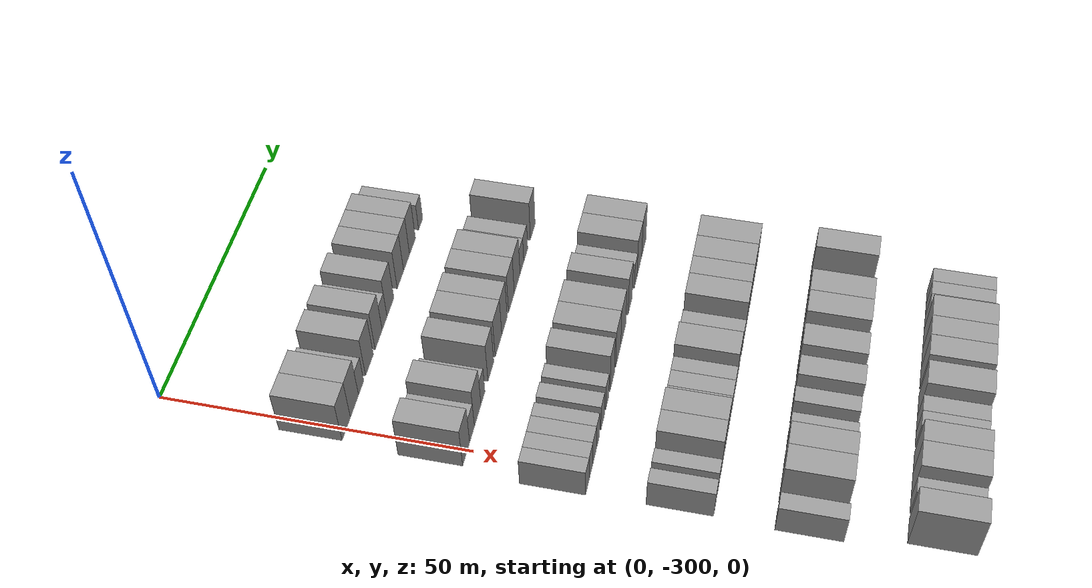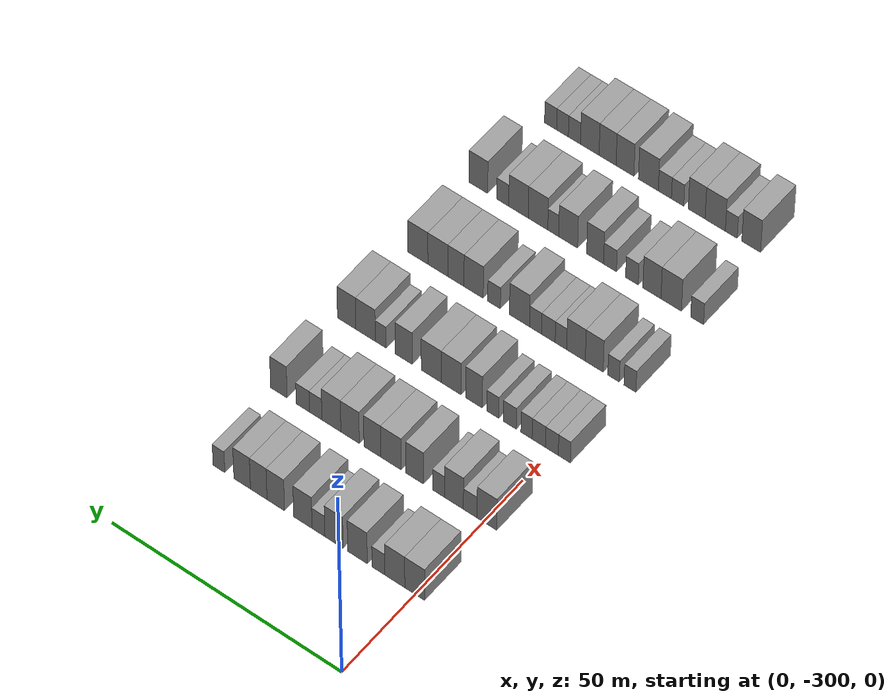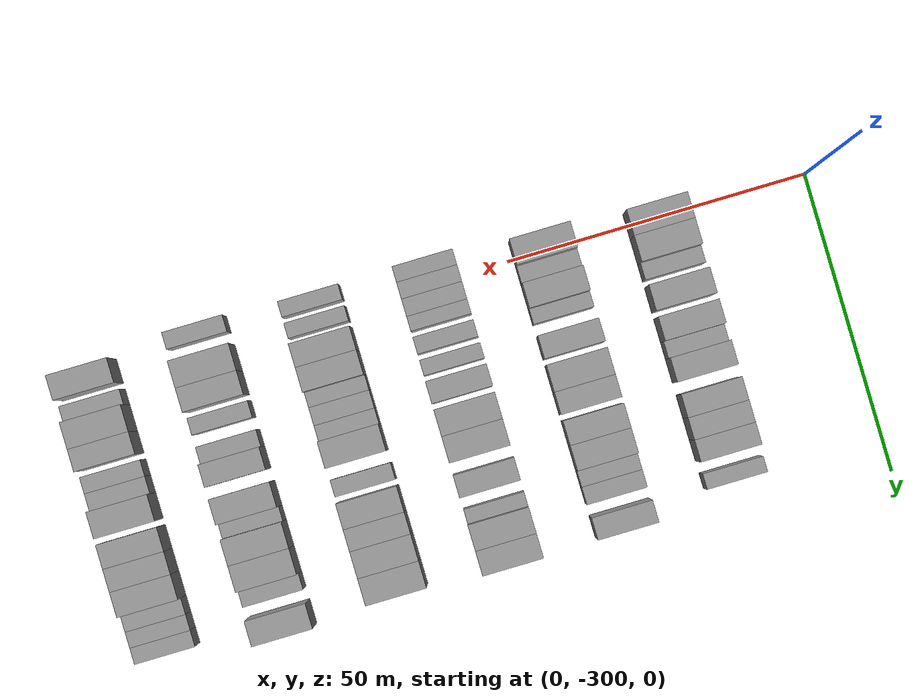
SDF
<sdf version="1.6">
 <world name="default">
  <model name="building_15">
   <static>1</static>
   <pose>25.0000 -299.8745 0 0.000000 0.000000 0.000000</pose>
   <link name="link">
    <pose>0 0 4.50 0 0 0</pose>
    <collision name="collision"><geometry><box><size>10.0000 4.2697 9.0000</size></box></geometry></collision>
    <visual name="visual">
     <cast_shadows>0</cast_shadows>
     <geometry><box><size>10.0000 4.2697 9.0000</size></box></geometry>
     <material>
      <script>
       <uri>model://grey_wall/materials/scripts</uri>
       <uri>model://grey_wall/materials/textures</uri>
       <name>vrc/grey_wall</name>
      </script>
     </material>
    </visual>
   </link>
  </model>
  <model name="building_16">
   <static>1</static>
   <pose>25.0000 -295.5966 0 0.000000 0.000000 0.000000</pose>
   <link name="link">
    <pose>0 0 4.50 0 0 0</pose>
    <collision name="collision"><geometry><box><size>10.0000 4.2861 9.0000</size></box></geometry></collision>
    <visual name="visual">
     <cast_shadows>0</cast_shadows>
     <geometry><box><size>10.0000 4.2861 9.0000</size></box></geometry>
     <material>
      <script>
       <uri>model://grey_wall/materials/scripts</uri>
       <uri>model://grey_wall/materials/textures</uri>
       <name>vrc/grey_wall</name>
      </script>
     </material>
    </visual>
   </link>
  </model>
  <model name="building_17">
   <static>1</static>
   <pose>25.0000 -292.0606 0 0.000000 0.000000 0.000000</pose>
   <link name="link">
    <pose>0 0 3.00 0 0 0</pose>
    <collision name="collision"><geometry><box><size>10.0000 2.7860 6.0000</size></box></geometry></collision>
    <visual name="visual">
     <cast_shadows>0</cast_shadows>
     <geometry><box><size>10.0000 2.7860 6.0000</size></box></geometry>
     <material>
      <script>
       <uri>model://grey_wall/materials/scripts</uri>
       <uri>model://grey_wall/materials/textures</uri>
       <name>vrc/grey_wall</name>
      </script>
     </material>
    </visual>
   </link>
  </model>
  <model name="building_18">
   <static>1</static>
   <pose>25.0000 -287.5462 0 0.000000 0.000000 0.000000</pose>
   <link name="link">
    <pose>0 0 4.50 0 0 0</pose>
    <collision name="collision"><geometry><box><size>10.0000 4.2428 9.0000</size></box></geometry></collision>
    <visual name="visual">
     <cast_shadows>0</cast_shadows>
     <geometry><box><size>10.0000 4.2428 9.0000</size></box></geometry>
     <material>
      <script>
       <uri>model://grey_wall/materials/scripts</uri>
       <uri>model://grey_wall/materials/textures</uri>
       <name>vrc/grey_wall</name>
      </script>
     </material>
    </visual>
   </link>
  </model>
  <model name="building_19">
   <static>1</static>
   <pose>25.0000 -282.4468 0 0.000000 0.000000 0.000000</pose>
   <link name="link">
    <pose>0 0 4.50 0 0 0</pose>
    <collision name="collision"><geometry><box><size>10.0000 3.9561 9.0000</size></box></geometry></collision>
    <visual name="visual">
     <cast_shadows>0</cast_shadows>
     <geometry><box><size>10.0000 3.9561 9.0000</size></box></geometry>
     <material>
      <script>
       <uri>model://grey_wall/materials/scripts</uri>
       <uri>model://grey_wall/materials/textures</uri>
       <name>vrc/grey_wall</name>
      </script>
     </material>
    </visual>
   </link>
  </model>
  <model name="building_20">
   <static>1</static>
   <pose>25.0000 -279.0800 0 0.000000 0.000000 0.000000</pose>
   <link name="link">
    <pose>0 0 3.00 0 0 0</pose>
    <collision name="collision"><geometry><box><size>10.0000 2.7774 6.0000</size></box></geometry></collision>
    <visual name="visual">
     <cast_shadows>0</cast_shadows>
     <geometry><box><size>10.0000 2.7774 6.0000</size></box></geometry>
     <material>
      <script>
       <uri>model://grey_wall/materials/scripts</uri>
       <uri>model://grey_wall/materials/textures</uri>
       <name>vrc/grey_wall</name>
      </script>
     </material>
    </visual>
   </link>
  </model>
  <model name="building_21">
   <static>1</static>
   <pose>25.0000 -275.6909 0 0.000000 0.000000 0.000000</pose>
   <link name="link">
    <pose>0 0 4.50 0 0 0</pose>
    <collision name="collision"><geometry><box><size>10.0000 4.0008 9.0000</size></box></geometry></collision>
    <visual name="visual">
     <cast_shadows>0</cast_shadows>
     <geometry><box><size>10.0000 4.0008 9.0000</size></box></geometry>
     <material>
      <script>
       <uri>model://grey_wall/materials/scripts</uri>
       <uri>model://grey_wall/materials/textures</uri>
       <name>vrc/grey_wall</name>
      </script>
     </material>
    </visual>
   </link>
  </model>
  <model name="building_22">
   <static>1</static>
   <pose>25.0000 -269.7736 0 0.000000 0.000000 0.000000</pose>
   <link name="link">
    <pose>0 0 4.50 0 0 0</pose>
    <collision name="collision"><geometry><box><size>10.0000 3.8338 9.0000</size></box></geometry></collision>
    <visual name="visual">
     <cast_shadows>0</cast_shadows>
     <geometry><box><size>10.0000 3.8338 9.0000</size></box></geometry>
     <material>
      <script>
       <uri>model://grey_wall/materials/scripts</uri>
       <uri>model://grey_wall/materials/textures</uri>
       <name>vrc/grey_wall</name>
      </script>
     </material>
    </visual>
   </link>
  </model>
  <model name="building_23">
   <static>1</static>
   <pose>25.0000 -266.0388 0 0.000000 0.000000 0.000000</pose>
   <link name="link">
    <pose>0 0 4.50 0 0 0</pose>
    <collision name="collision"><geometry><box><size>10.0000 3.6357 9.0000</size></box></geometry></collision>
    <visual name="visual">
     <cast_shadows>0</cast_shadows>
     <geometry><box><size>10.0000 3.6357 9.0000</size></box></geometry>
     <material>
      <script>
       <uri>model://grey_wall/materials/scripts</uri>
       <uri>model://grey_wall/materials/textures</uri>
       <name>vrc/grey_wall</name>
      </script>
     </material>
    </visual>
   </link>
  </model>
  <model name="building_24">
   <static>1</static>
   <pose>25.0000 -262.4024 0 0.000000 0.000000 0.000000</pose>
   <link name="link">
    <pose>0 0 4.50 0 0 0</pose>
    <collision name="collision"><geometry><box><size>10.0000 3.6371 9.0000</size></box></geometry></collision>
    <visual name="visual">
     <cast_shadows>0</cast_shadows>
     <geometry><box><size>10.0000 3.6371 9.0000</size></box></geometry>
     <material>
      <script>
       <uri>model://grey_wall/materials/scripts</uri>
       <uri>model://grey_wall/materials/textures</uri>
       <name>vrc/grey_wall</name>
      </script>
     </material>
    </visual>
   </link>
  </model>
  <model name="building_25">
   <static>1</static>
   <pose>25.0000 -257.2900 0 0.000000 0.000000 0.000000</pose>
   <link name="link">
    <pose>0 0 3.00 0 0 0</pose>
    <collision name="collision"><geometry><box><size>10.0000 2.5878 6.0000</size></box></geometry></collision>
    <visual name="visual">
     <cast_shadows>0</cast_shadows>
     <geometry><box><size>10.0000 2.5878 6.0000</size></box></geometry>
     <material>
      <script>
       <uri>model://grey_wall/materials/scripts</uri>
       <uri>model://grey_wall/materials/textures</uri>
       <name>vrc/grey_wall</name>
      </script>
     </material>
    </visual>
   </link>
  </model>
  <model name="building_189">
   <static>1</static>
   <pose>44.0000 -300.6601 0 0.000000 0.000000 0.000000</pose>
   <link name="link">
    <pose>0 0 4.50 0 0 0</pose>
    <collision name="collision"><geometry><box><size>10.0000 4.2531 9.0000</size></box></geometry></collision>
    <visual name="visual">
     <cast_shadows>0</cast_shadows>
     <geometry><box><size>10.0000 4.2531 9.0000</size></box></geometry>
     <material>
      <script>
       <uri>model://grey_wall/materials/scripts</uri>
       <uri>model://grey_wall/materials/textures</uri>
       <name>vrc/grey_wall</name>
      </script>
     </material>
    </visual>
   </link>
  </model>
  <model name="building_190">
   <static>1</static>
   <pose>44.0000 -297.0552 0 0.000000 0.000000 0.000000</pose>
   <link name="link">
    <pose>0 0 3.00 0 0 0</pose>
    <collision name="collision"><geometry><box><size>10.0000 2.9566 6.0000</size></box></geometry></collision>
    <visual name="visual">
     <cast_shadows>0</cast_shadows>
     <geometry><box><size>10.0000 2.9566 6.0000</size></box></geometry>
     <material>
      <script>
       <uri>model://grey_wall/materials/scripts</uri>
       <uri>model://grey_wall/materials/textures</uri>
       <name>vrc/grey_wall</name>
      </script>
     </material>
    </visual>
   </link>
  </model>
  <model name="building_191">
   <static>1</static>
   <pose>44.0000 -293.5176 0 0.000000 0.000000 0.000000</pose>
   <link name="link">
    <pose>0 0 4.50 0 0 0</pose>
    <collision name="collision"><geometry><box><size>10.0000 4.1186 9.0000</size></box></geometry></collision>
    <visual name="visual">
     <cast_shadows>0</cast_shadows>
     <geometry><box><size>10.0000 4.1186 9.0000</size></box></geometry>
     <material>
      <script>
       <uri>model://grey_wall/materials/scripts</uri>
       <uri>model://grey_wall/materials/textures</uri>
       <name>vrc/grey_wall</name>
      </script>
     </material>
    </visual>
   </link>
  </model>
  <model name="building_192">
   <static>1</static>
   <pose>44.0000 -290.1883 0 0.000000 0.000000 0.000000</pose>
   <link name="link">
    <pose>0 0 3.00 0 0 0</pose>
    <collision name="collision"><geometry><box><size>10.0000 2.5401 6.0000</size></box></geometry></collision>
    <visual name="visual">
     <cast_shadows>0</cast_shadows>
     <geometry><box><size>10.0000 2.5401 6.0000</size></box></geometry>
     <material>
      <script>
       <uri>model://grey_wall/materials/scripts</uri>
       <uri>model://grey_wall/materials/textures</uri>
       <name>vrc/grey_wall</name>
      </script>
     </material>
    </visual>
   </link>
  </model>
  <model name="building_193">
   <static>1</static>
   <pose>44.0000 -285.0162 0 0.000000 0.000000 0.000000</pose>
   <link name="link">
    <pose>0 0 4.50 0 0 0</pose>
    <collision name="collision"><geometry><box><size>10.0000 3.8040 9.0000</size></box></geometry></collision>
    <visual name="visual">
     <cast_shadows>0</cast_shadows>
     <geometry><box><size>10.0000 3.8040 9.0000</size></box></geometry>
     <material>
      <script>
       <uri>model://grey_wall/materials/scripts</uri>
       <uri>model://grey_wall/materials/textures</uri>
       <name>vrc/grey_wall</name>
      </script>
     </material>
    </visual>
   </link>
  </model>
  <model name="building_194">
   <static>1</static>
   <pose>44.0000 -279.8894 0 0.000000 0.000000 0.000000</pose>
   <link name="link">
    <pose>0 0 4.50 0 0 0</pose>
    <collision name="collision"><geometry><box><size>10.0000 4.4496 9.0000</size></box></geometry></collision>
    <visual name="visual">
     <cast_shadows>0</cast_shadows>
     <geometry><box><size>10.0000 4.4496 9.0000</size></box></geometry>
     <material>
      <script>
       <uri>model://grey_wall/materials/scripts</uri>
       <uri>model://grey_wall/materials/textures</uri>
       <name>vrc/grey_wall</name>
      </script>
     </material>
    </visual>
   </link>
  </model>
  <model name="building_195">
   <static>1</static>
   <pose>44.0000 -275.8088 0 0.000000 0.000000 0.000000</pose>
   <link name="link">
    <pose>0 0 4.50 0 0 0</pose>
    <collision name="collision"><geometry><box><size>10.0000 3.7117 9.0000</size></box></geometry></collision>
    <visual name="visual">
     <cast_shadows>0</cast_shadows>
     <geometry><box><size>10.0000 3.7117 9.0000</size></box></geometry>
     <material>
      <script>
       <uri>model://grey_wall/materials/scripts</uri>
       <uri>model://grey_wall/materials/textures</uri>
       <name>vrc/grey_wall</name>
      </script>
     </material>
    </visual>
   </link>
  </model>
  <model name="building_196">
   <static>1</static>
   <pose>44.0000 -270.9281 0 0.000000 0.000000 0.000000</pose>
   <link name="link">
    <pose>0 0 4.50 0 0 0</pose>
    <collision name="collision"><geometry><box><size>10.0000 4.0497 9.0000</size></box></geometry></collision>
    <visual name="visual">
     <cast_shadows>0</cast_shadows>
     <geometry><box><size>10.0000 4.0497 9.0000</size></box></geometry>
     <material>
      <script>
       <uri>model://grey_wall/materials/scripts</uri>
       <uri>model://grey_wall/materials/textures</uri>
       <name>vrc/grey_wall</name>
      </script>
     </material>
    </visual>
   </link>
  </model>
  <model name="building_197">
   <static>1</static>
   <pose>44.0000 -266.8199 0 0.000000 0.000000 0.000000</pose>
   <link name="link">
    <pose>0 0 4.50 0 0 0</pose>
    <collision name="collision"><geometry><box><size>10.0000 4.1667 9.0000</size></box></geometry></collision>
    <visual name="visual">
     <cast_shadows>0</cast_shadows>
     <geometry><box><size>10.0000 4.1667 9.0000</size></box></geometry>
     <material>
      <script>
       <uri>model://grey_wall/materials/scripts</uri>
       <uri>model://grey_wall/materials/textures</uri>
       <name>vrc/grey_wall</name>
      </script>
     </material>
    </visual>
   </link>
  </model>
  <model name="building_198">
   <static>1</static>
   <pose>44.0000 -263.3643 0 0.000000 0.000000 0.000000</pose>
   <link name="link">
    <pose>0 0 3.00 0 0 0</pose>
    <collision name="collision"><geometry><box><size>10.0000 2.7443 6.0000</size></box></geometry></collision>
    <visual name="visual">
     <cast_shadows>0</cast_shadows>
     <geometry><box><size>10.0000 2.7443 6.0000</size></box></geometry>
     <material>
      <script>
       <uri>model://grey_wall/materials/scripts</uri>
       <uri>model://grey_wall/materials/textures</uri>
       <name>vrc/grey_wall</name>
      </script>
     </material>
    </visual>
   </link>
  </model>
  <model name="building_199">
   <static>1</static>
   <pose>44.0000 -260.5247 0 0.000000 0.000000 0.000000</pose>
   <link name="link">
    <pose>0 0 3.00 0 0 0</pose>
    <collision name="collision"><geometry><box><size>10.0000 2.9349 6.0000</size></box></geometry></collision>
    <visual name="visual">
     <cast_shadows>0</cast_shadows>
     <geometry><box><size>10.0000 2.9349 6.0000</size></box></geometry>
     <material>
      <script>
       <uri>model://grey_wall/materials/scripts</uri>
       <uri>model://grey_wall/materials/textures</uri>
       <name>vrc/grey_wall</name>
      </script>
     </material>
    </visual>
   </link>
  </model>
  <model name="building_200">
   <static>1</static>
   <pose>44.0000 -255.2280 0 0.000000 0.000000 0.000000</pose>
   <link name="link">
    <pose>0 0 4.50 0 0 0</pose>
    <collision name="collision"><geometry><box><size>10.0000 3.6584 9.0000</size></box></geometry></collision>
    <visual name="visual">
     <cast_shadows>0</cast_shadows>
     <geometry><box><size>10.0000 3.6584 9.0000</size></box></geometry>
     <material>
      <script>
       <uri>model://grey_wall/materials/scripts</uri>
       <uri>model://grey_wall/materials/textures</uri>
       <name>vrc/grey_wall</name>
      </script>
     </material>
    </visual>
   </link>
  </model>
  <model name="building_368">
   <static>1</static>
   <pose>63.0000 -302.7868 0 0.000000 0.000000 0.000000</pose>
   <link name="link">
    <pose>0 0 3.00 0 0 0</pose>
    <collision name="collision"><geometry><box><size>10.0000 2.6093 6.0000</size></box></geometry></collision>
    <visual name="visual">
     <cast_shadows>0</cast_shadows>
     <geometry><box><size>10.0000 2.6093 6.0000</size></box></geometry>
     <material>
      <script>
       <uri>model://grey_wall/materials/scripts</uri>
       <uri>model://grey_wall/materials/textures</uri>
       <name>vrc/grey_wall</name>
      </script>
     </material>
    </visual>
   </link>
  </model>
  <model name="building_369">
   <static>1</static>
   <pose>63.0000 -300.0994 0 0.000000 0.000000 0.000000</pose>
   <link name="link">
    <pose>0 0 3.00 0 0 0</pose>
    <collision name="collision"><geometry><box><size>10.0000 2.7655 6.0000</size></box></geometry></collision>
    <visual name="visual">
     <cast_shadows>0</cast_shadows>
     <geometry><box><size>10.0000 2.7655 6.0000</size></box></geometry>
     <material>
      <script>
       <uri>model://grey_wall/materials/scripts</uri>
       <uri>model://grey_wall/materials/textures</uri>
       <name>vrc/grey_wall</name>
      </script>
     </material>
    </visual>
   </link>
  </model>
  <model name="building_370">
   <static>1</static>
   <pose>63.0000 -297.2694 0 0.000000 0.000000 0.000000</pose>
   <link name="link">
    <pose>0 0 3.00 0 0 0</pose>
    <collision name="collision"><geometry><box><size>10.0000 2.8946 6.0000</size></box></geometry></collision>
    <visual name="visual">
     <cast_shadows>0</cast_shadows>
     <geometry><box><size>10.0000 2.8946 6.0000</size></box></geometry>
     <material>
      <script>
       <uri>model://grey_wall/materials/scripts</uri>
       <uri>model://grey_wall/materials/textures</uri>
       <name>vrc/grey_wall</name>
      </script>
     </material>
    </visual>
   </link>
  </model>
  <model name="building_371">
   <static>1</static>
   <pose>63.0000 -294.6077 0 0.000000 0.000000 0.000000</pose>
   <link name="link">
    <pose>0 0 3.00 0 0 0</pose>
    <collision name="collision"><geometry><box><size>10.0000 2.4286 6.0000</size></box></geometry></collision>
    <visual name="visual">
     <cast_shadows>0</cast_shadows>
     <geometry><box><size>10.0000 2.4286 6.0000</size></box></geometry>
     <material>
      <script>
       <uri>model://grey_wall/materials/scripts</uri>
       <uri>model://grey_wall/materials/textures</uri>
       <name>vrc/grey_wall</name>
      </script>
     </material>
    </visual>
   </link>
  </model>
  <model name="building_372">
   <static>1</static>
   <pose>63.0000 -290.9946 0 0.000000 0.000000 0.000000</pose>
   <link name="link">
    <pose>0 0 3.00 0 0 0</pose>
    <collision name="collision"><geometry><box><size>10.0000 2.7977 6.0000</size></box></geometry></collision>
    <visual name="visual">
     <cast_shadows>0</cast_shadows>
     <geometry><box><size>10.0000 2.7977 6.0000</size></box></geometry>
     <material>
      <script>
       <uri>model://grey_wall/materials/scripts</uri>
       <uri>model://grey_wall/materials/textures</uri>
       <name>vrc/grey_wall</name>
      </script>
     </material>
    </visual>
   </link>
  </model>
  <model name="building_373">
   <static>1</static>
   <pose>63.0000 -287.3078 0 0.000000 0.000000 0.000000</pose>
   <link name="link">
    <pose>0 0 3.00 0 0 0</pose>
    <collision name="collision"><geometry><box><size>10.0000 2.5759 6.0000</size></box></geometry></collision>
    <visual name="visual">
     <cast_shadows>0</cast_shadows>
     <geometry><box><size>10.0000 2.5759 6.0000</size></box></geometry>
     <material>
      <script>
       <uri>model://grey_wall/materials/scripts</uri>
       <uri>model://grey_wall/materials/textures</uri>
       <name>vrc/grey_wall</name>
      </script>
     </material>
    </visual>
   </link>
  </model>
  <model name="building_374">
   <static>1</static>
   <pose>63.0000 -283.2006 0 0.000000 0.000000 0.000000</pose>
   <link name="link">
    <pose>0 0 4.50 0 0 0</pose>
    <collision name="collision"><geometry><box><size>10.0000 3.6383 9.0000</size></box></geometry></collision>
    <visual name="visual">
     <cast_shadows>0</cast_shadows>
     <geometry><box><size>10.0000 3.6383 9.0000</size></box></geometry>
     <material>
      <script>
       <uri>model://grey_wall/materials/scripts</uri>
       <uri>model://grey_wall/materials/textures</uri>
       <name>vrc/grey_wall</name>
      </script>
     </material>
    </visual>
   </link>
  </model>
  <model name="building_375">
   <static>1</static>
   <pose>63.0000 -278.1908 0 0.000000 0.000000 0.000000</pose>
   <link name="link">
    <pose>0 0 4.50 0 0 0</pose>
    <collision name="collision"><geometry><box><size>10.0000 4.3814 9.0000</size></box></geometry></collision>
    <visual name="visual">
     <cast_shadows>0</cast_shadows>
     <geometry><box><size>10.0000 4.3814 9.0000</size></box></geometry>
     <material>
      <script>
       <uri>model://grey_wall/materials/scripts</uri>
       <uri>model://grey_wall/materials/textures</uri>
       <name>vrc/grey_wall</name>
      </script>
     </material>
    </visual>
   </link>
  </model>
  <model name="building_376">
   <static>1</static>
   <pose>63.0000 -273.8181 0 0.000000 0.000000 0.000000</pose>
   <link name="link">
    <pose>0 0 4.50 0 0 0</pose>
    <collision name="collision"><geometry><box><size>10.0000 4.3639 9.0000</size></box></geometry></collision>
    <visual name="visual">
     <cast_shadows>0</cast_shadows>
     <geometry><box><size>10.0000 4.3639 9.0000</size></box></geometry>
     <material>
      <script>
       <uri>model://grey_wall/materials/scripts</uri>
       <uri>model://grey_wall/materials/textures</uri>
       <name>vrc/grey_wall</name>
      </script>
     </material>
    </visual>
   </link>
  </model>
  <model name="building_377">
   <static>1</static>
   <pose>63.0000 -267.7756 0 0.000000 0.000000 0.000000</pose>
   <link name="link">
    <pose>0 0 4.50 0 0 0</pose>
    <collision name="collision"><geometry><box><size>10.0000 3.7212 9.0000</size></box></geometry></collision>
    <visual name="visual">
     <cast_shadows>0</cast_shadows>
     <geometry><box><size>10.0000 3.7212 9.0000</size></box></geometry>
     <material>
      <script>
       <uri>model://grey_wall/materials/scripts</uri>
       <uri>model://grey_wall/materials/textures</uri>
       <name>vrc/grey_wall</name>
      </script>
     </material>
    </visual>
   </link>
  </model>
  <model name="building_378">
   <static>1</static>
   <pose>63.0000 -262.7064 0 0.000000 0.000000 0.000000</pose>
   <link name="link">
    <pose>0 0 3.00 0 0 0</pose>
    <collision name="collision"><geometry><box><size>10.0000 2.4173 6.0000</size></box></geometry></collision>
    <visual name="visual">
     <cast_shadows>0</cast_shadows>
     <geometry><box><size>10.0000 2.4173 6.0000</size></box></geometry>
     <material>
      <script>
       <uri>model://grey_wall/materials/scripts</uri>
       <uri>model://grey_wall/materials/textures</uri>
       <name>vrc/grey_wall</name>
      </script>
     </material>
    </visual>
   </link>
  </model>
  <model name="building_379">
   <static>1</static>
   <pose>63.0000 -259.3385 0 0.000000 0.000000 0.000000</pose>
   <link name="link">
    <pose>0 0 4.50 0 0 0</pose>
    <collision name="collision"><geometry><box><size>10.0000 4.3184 9.0000</size></box></geometry></collision>
    <visual name="visual">
     <cast_shadows>0</cast_shadows>
     <geometry><box><size>10.0000 4.3184 9.0000</size></box></geometry>
     <material>
      <script>
       <uri>model://grey_wall/materials/scripts</uri>
       <uri>model://grey_wall/materials/textures</uri>
       <name>vrc/grey_wall</name>
      </script>
     </material>
    </visual>
   </link>
  </model>
  <model name="building_380">
   <static>1</static>
   <pose>63.0000 -255.1446 0 0.000000 0.000000 0.000000</pose>
   <link name="link">
    <pose>0 0 4.50 0 0 0</pose>
    <collision name="collision"><geometry><box><size>10.0000 4.0695 9.0000</size></box></geometry></collision>
    <visual name="visual">
     <cast_shadows>0</cast_shadows>
     <geometry><box><size>10.0000 4.0695 9.0000</size></box></geometry>
     <material>
      <script>
       <uri>model://grey_wall/materials/scripts</uri>
       <uri>model://grey_wall/materials/textures</uri>
       <name>vrc/grey_wall</name>
      </script>
     </material>
    </visual>
   </link>
  </model>
  <model name="building_539">
   <static>1</static>
   <pose>82.0000 -302.6143 0 0.000000 0.000000 0.000000</pose>
   <link name="link">
    <pose>0 0 3.00 0 0 0</pose>
    <collision name="collision"><geometry><box><size>10.0000 2.5913 6.0000</size></box></geometry></collision>
    <visual name="visual">
     <cast_shadows>0</cast_shadows>
     <geometry><box><size>10.0000 2.5913 6.0000</size></box></geometry>
     <material>
      <script>
       <uri>model://grey_wall/materials/scripts</uri>
       <uri>model://grey_wall/materials/textures</uri>
       <name>vrc/grey_wall</name>
      </script>
     </material>
    </visual>
   </link>
  </model>
  <model name="building_540">
   <static>1</static>
   <pose>82.0000 -299.0664 0 0.000000 0.000000 0.000000</pose>
   <link name="link">
    <pose>0 0 3.00 0 0 0</pose>
    <collision name="collision"><geometry><box><size>10.0000 2.5045 6.0000</size></box></geometry></collision>
    <visual name="visual">
     <cast_shadows>0</cast_shadows>
     <geometry><box><size>10.0000 2.5045 6.0000</size></box></geometry>
     <material>
      <script>
       <uri>model://grey_wall/materials/scripts</uri>
       <uri>model://grey_wall/materials/textures</uri>
       <name>vrc/grey_wall</name>
      </script>
     </material>
    </visual>
   </link>
  </model>
  <model name="building_541">
   <static>1</static>
   <pose>82.0000 -294.8686 0 0.000000 0.000000 0.000000</pose>
   <link name="link">
    <pose>0 0 4.50 0 0 0</pose>
    <collision name="collision"><geometry><box><size>10.0000 3.8911 9.0000</size></box></geometry></collision>
    <visual name="visual">
     <cast_shadows>0</cast_shadows>
     <geometry><box><size>10.0000 3.8911 9.0000</size></box></geometry>
     <material>
      <script>
       <uri>model://grey_wall/materials/scripts</uri>
       <uri>model://grey_wall/materials/textures</uri>
       <name>vrc/grey_wall</name>
      </script>
     </material>
    </visual>
   </link>
  </model>
  <model name="building_542">
   <static>1</static>
   <pose>82.0000 -290.8917 0 0.000000 0.000000 0.000000</pose>
   <link name="link">
    <pose>0 0 4.50 0 0 0</pose>
    <collision name="collision"><geometry><box><size>10.0000 4.0627 9.0000</size></box></geometry></collision>
    <visual name="visual">
     <cast_shadows>0</cast_shadows>
     <geometry><box><size>10.0000 4.0627 9.0000</size></box></geometry>
     <material>
      <script>
       <uri>model://grey_wall/materials/scripts</uri>
       <uri>model://grey_wall/materials/textures</uri>
       <name>vrc/grey_wall</name>
      </script>
     </material>
    </visual>
   </link>
  </model>
  <model name="building_543">
   <static>1</static>
   <pose>82.0000 -287.6085 0 0.000000 0.000000 0.000000</pose>
   <link name="link">
    <pose>0 0 3.00 0 0 0</pose>
    <collision name="collision"><geometry><box><size>10.0000 2.5038 6.0000</size></box></geometry></collision>
    <visual name="visual">
     <cast_shadows>0</cast_shadows>
     <geometry><box><size>10.0000 2.5038 6.0000</size></box></geometry>
     <material>
      <script>
       <uri>model://grey_wall/materials/scripts</uri>
       <uri>model://grey_wall/materials/textures</uri>
       <name>vrc/grey_wall</name>
      </script>
     </material>
    </visual>
   </link>
  </model>
  <model name="building_544">
   <static>1</static>
   <pose>82.0000 -284.8606 0 0.000000 0.000000 0.000000</pose>
   <link name="link">
    <pose>0 0 3.00 0 0 0</pose>
    <collision name="collision"><geometry><box><size>10.0000 2.9918 6.0000</size></box></geometry></collision>
    <visual name="visual">
     <cast_shadows>0</cast_shadows>
     <geometry><box><size>10.0000 2.9918 6.0000</size></box></geometry>
     <material>
      <script>
       <uri>model://grey_wall/materials/scripts</uri>
       <uri>model://grey_wall/materials/textures</uri>
       <name>vrc/grey_wall</name>
      </script>
     </material>
    </visual>
   </link>
  </model>
  <model name="building_545">
   <static>1</static>
   <pose>82.0000 -282.0610 0 0.000000 0.000000 0.000000</pose>
   <link name="link">
    <pose>0 0 3.00 0 0 0</pose>
    <collision name="collision"><geometry><box><size>10.0000 2.6075 6.0000</size></box></geometry></collision>
    <visual name="visual">
     <cast_shadows>0</cast_shadows>
     <geometry><box><size>10.0000 2.6075 6.0000</size></box></geometry>
     <material>
      <script>
       <uri>model://grey_wall/materials/scripts</uri>
       <uri>model://grey_wall/materials/textures</uri>
       <name>vrc/grey_wall</name>
      </script>
     </material>
    </visual>
   </link>
  </model>
  <model name="building_546">
   <static>1</static>
   <pose>82.0000 -278.5476 0 0.000000 0.000000 0.000000</pose>
   <link name="link">
    <pose>0 0 4.50 0 0 0</pose>
    <collision name="collision"><geometry><box><size>10.0000 4.4194 9.0000</size></box></geometry></collision>
    <visual name="visual">
     <cast_shadows>0</cast_shadows>
     <geometry><box><size>10.0000 4.4194 9.0000</size></box></geometry>
     <material>
      <script>
       <uri>model://grey_wall/materials/scripts</uri>
       <uri>model://grey_wall/materials/textures</uri>
       <name>vrc/grey_wall</name>
      </script>
     </material>
    </visual>
   </link>
  </model>
  <model name="building_547">
   <static>1</static>
   <pose>82.0000 -272.9464 0 0.000000 0.000000 0.000000</pose>
   <link name="link">
    <pose>0 0 3.00 0 0 0</pose>
    <collision name="collision"><geometry><box><size>10.0000 2.7831 6.0000</size></box></geometry></collision>
    <visual name="visual">
     <cast_shadows>0</cast_shadows>
     <geometry><box><size>10.0000 2.7831 6.0000</size></box></geometry>
     <material>
      <script>
       <uri>model://grey_wall/materials/scripts</uri>
       <uri>model://grey_wall/materials/textures</uri>
       <name>vrc/grey_wall</name>
      </script>
     </material>
    </visual>
   </link>
  </model>
  <model name="building_548">
   <static>1</static>
   <pose>82.0000 -268.4325 0 0.000000 0.000000 0.000000</pose>
   <link name="link">
    <pose>0 0 4.50 0 0 0</pose>
    <collision name="collision"><geometry><box><size>10.0000 4.2447 9.0000</size></box></geometry></collision>
    <visual name="visual">
     <cast_shadows>0</cast_shadows>
     <geometry><box><size>10.0000 4.2447 9.0000</size></box></geometry>
     <material>
      <script>
       <uri>model://grey_wall/materials/scripts</uri>
       <uri>model://grey_wall/materials/textures</uri>
       <name>vrc/grey_wall</name>
      </script>
     </material>
    </visual>
   </link>
  </model>
  <model name="building_549">
   <static>1</static>
   <pose>82.0000 -264.5042 0 0.000000 0.000000 0.000000</pose>
   <link name="link">
    <pose>0 0 4.50 0 0 0</pose>
    <collision name="collision"><geometry><box><size>10.0000 3.6119 9.0000</size></box></geometry></collision>
    <visual name="visual">
     <cast_shadows>0</cast_shadows>
     <geometry><box><size>10.0000 3.6119 9.0000</size></box></geometry>
     <material>
      <script>
       <uri>model://grey_wall/materials/scripts</uri>
       <uri>model://grey_wall/materials/textures</uri>
       <name>vrc/grey_wall</name>
      </script>
     </material>
    </visual>
   </link>
  </model>
  <model name="building_550">
   <static>1</static>
   <pose>82.0000 -260.4912 0 0.000000 0.000000 0.000000</pose>
   <link name="link">
    <pose>0 0 4.50 0 0 0</pose>
    <collision name="collision"><geometry><box><size>10.0000 4.4142 9.0000</size></box></geometry></collision>
    <visual name="visual">
     <cast_shadows>0</cast_shadows>
     <geometry><box><size>10.0000 4.4142 9.0000</size></box></geometry>
     <material>
      <script>
       <uri>model://grey_wall/materials/scripts</uri>
       <uri>model://grey_wall/materials/textures</uri>
       <name>vrc/grey_wall</name>
      </script>
     </material>
    </visual>
   </link>
  </model>
  <model name="building_551">
   <static>1</static>
   <pose>82.0000 -256.0532 0 0.000000 0.000000 0.000000</pose>
   <link name="link">
    <pose>0 0 4.50 0 0 0</pose>
    <collision name="collision"><geometry><box><size>10.0000 4.4618 9.0000</size></box></geometry></collision>
    <visual name="visual">
     <cast_shadows>0</cast_shadows>
     <geometry><box><size>10.0000 4.4618 9.0000</size></box></geometry>
     <material>
      <script>
       <uri>model://grey_wall/materials/scripts</uri>
       <uri>model://grey_wall/materials/textures</uri>
       <name>vrc/grey_wall</name>
      </script>
     </material>
    </visual>
   </link>
  </model>
  <model name="building_717">
   <static>1</static>
   <pose>101.0000 -303.0050 0 0.000000 0.000000 0.000000</pose>
   <link name="link">
    <pose>0 0 3.00 0 0 0</pose>
    <collision name="collision"><geometry><box><size>10.0000 2.7919 6.0000</size></box></geometry></collision>
    <visual name="visual">
     <cast_shadows>0</cast_shadows>
     <geometry><box><size>10.0000 2.7919 6.0000</size></box></geometry>
     <material>
      <script>
       <uri>model://grey_wall/materials/scripts</uri>
       <uri>model://grey_wall/materials/textures</uri>
       <name>vrc/grey_wall</name>
      </script>
     </material>
    </visual>
   </link>
  </model>
  <model name="building_718">
   <static>1</static>
   <pose>101.0000 -297.3794 0 0.000000 0.000000 0.000000</pose>
   <link name="link">
    <pose>0 0 4.50 0 0 0</pose>
    <collision name="collision"><geometry><box><size>10.0000 4.4592 9.0000</size></box></geometry></collision>
    <visual name="visual">
     <cast_shadows>0</cast_shadows>
     <geometry><box><size>10.0000 4.4592 9.0000</size></box></geometry>
     <material>
      <script>
       <uri>model://grey_wall/materials/scripts</uri>
       <uri>model://grey_wall/materials/textures</uri>
       <name>vrc/grey_wall</name>
      </script>
     </material>
    </visual>
   </link>
  </model>
  <model name="building_719">
   <static>1</static>
   <pose>101.0000 -293.1706 0 0.000000 0.000000 0.000000</pose>
   <link name="link">
    <pose>0 0 4.50 0 0 0</pose>
    <collision name="collision"><geometry><box><size>10.0000 3.9584 9.0000</size></box></geometry></collision>
    <visual name="visual">
     <cast_shadows>0</cast_shadows>
     <geometry><box><size>10.0000 3.9584 9.0000</size></box></geometry>
     <material>
      <script>
       <uri>model://grey_wall/materials/scripts</uri>
       <uri>model://grey_wall/materials/textures</uri>
       <name>vrc/grey_wall</name>
      </script>
     </material>
    </visual>
   </link>
  </model>
  <model name="building_720">
   <static>1</static>
   <pose>101.0000 -288.8042 0 0.000000 0.000000 0.000000</pose>
   <link name="link">
    <pose>0 0 3.00 0 0 0</pose>
    <collision name="collision"><geometry><box><size>10.0000 2.7744 6.0000</size></box></geometry></collision>
    <visual name="visual">
     <cast_shadows>0</cast_shadows>
     <geometry><box><size>10.0000 2.7744 6.0000</size></box></geometry>
     <material>
      <script>
       <uri>model://grey_wall/materials/scripts</uri>
       <uri>model://grey_wall/materials/textures</uri>
       <name>vrc/grey_wall</name>
      </script>
     </material>
    </visual>
   </link>
  </model>
  <model name="building_721">
   <static>1</static>
   <pose>101.0000 -283.9977 0 0.000000 0.000000 0.000000</pose>
   <link name="link">
    <pose>0 0 3.00 0 0 0</pose>
    <collision name="collision"><geometry><box><size>10.0000 2.8385 6.0000</size></box></geometry></collision>
    <visual name="visual">
     <cast_shadows>0</cast_shadows>
     <geometry><box><size>10.0000 2.8385 6.0000</size></box></geometry>
     <material>
      <script>
       <uri>model://grey_wall/materials/scripts</uri>
       <uri>model://grey_wall/materials/textures</uri>
       <name>vrc/grey_wall</name>
      </script>
     </material>
    </visual>
   </link>
  </model>
  <model name="building_722">
   <static>1</static>
   <pose>101.0000 -280.7215 0 0.000000 0.000000 0.000000</pose>
   <link name="link">
    <pose>0 0 4.50 0 0 0</pose>
    <collision name="collision"><geometry><box><size>10.0000 3.7140 9.0000</size></box></geometry></collision>
    <visual name="visual">
     <cast_shadows>0</cast_shadows>
     <geometry><box><size>10.0000 3.7140 9.0000</size></box></geometry>
     <material>
      <script>
       <uri>model://grey_wall/materials/scripts</uri>
       <uri>model://grey_wall/materials/textures</uri>
       <name>vrc/grey_wall</name>
      </script>
     </material>
    </visual>
   </link>
  </model>
  <model name="building_723">
   <static>1</static>
   <pose>101.0000 -274.7720 0 0.000000 0.000000 0.000000</pose>
   <link name="link">
    <pose>0 0 4.50 0 0 0</pose>
    <collision name="collision"><geometry><box><size>10.0000 4.1851 9.0000</size></box></geometry></collision>
    <visual name="visual">
     <cast_shadows>0</cast_shadows>
     <geometry><box><size>10.0000 4.1851 9.0000</size></box></geometry>
     <material>
      <script>
       <uri>model://grey_wall/materials/scripts</uri>
       <uri>model://grey_wall/materials/textures</uri>
       <name>vrc/grey_wall</name>
      </script>
     </material>
    </visual>
   </link>
  </model>
  <model name="building_724">
   <static>1</static>
   <pose>101.0000 -271.4790 0 0.000000 0.000000 0.000000</pose>
   <link name="link">
    <pose>0 0 3.00 0 0 0</pose>
    <collision name="collision"><geometry><box><size>10.0000 2.4008 6.0000</size></box></geometry></collision>
    <visual name="visual">
     <cast_shadows>0</cast_shadows>
     <geometry><box><size>10.0000 2.4008 6.0000</size></box></geometry>
     <material>
      <script>
       <uri>model://grey_wall/materials/scripts</uri>
       <uri>model://grey_wall/materials/textures</uri>
       <name>vrc/grey_wall</name>
      </script>
     </material>
    </visual>
   </link>
  </model>
  <model name="building_725">
   <static>1</static>
   <pose>101.0000 -268.1192 0 0.000000 0.000000 0.000000</pose>
   <link name="link">
    <pose>0 0 4.50 0 0 0</pose>
    <collision name="collision"><geometry><box><size>10.0000 4.3189 9.0000</size></box></geometry></collision>
    <visual name="visual">
     <cast_shadows>0</cast_shadows>
     <geometry><box><size>10.0000 4.3189 9.0000</size></box></geometry>
     <material>
      <script>
       <uri>model://grey_wall/materials/scripts</uri>
       <uri>model://grey_wall/materials/textures</uri>
       <name>vrc/grey_wall</name>
      </script>
     </material>
    </visual>
   </link>
  </model>
  <model name="building_726">
   <static>1</static>
   <pose>101.0000 -263.7859 0 0.000000 0.000000 0.000000</pose>
   <link name="link">
    <pose>0 0 4.50 0 0 0</pose>
    <collision name="collision"><geometry><box><size>10.0000 4.3476 9.0000</size></box></geometry></collision>
    <visual name="visual">
     <cast_shadows>0</cast_shadows>
     <geometry><box><size>10.0000 4.3476 9.0000</size></box></geometry>
     <material>
      <script>
       <uri>model://grey_wall/materials/scripts</uri>
       <uri>model://grey_wall/materials/textures</uri>
       <name>vrc/grey_wall</name>
      </script>
     </material>
    </visual>
   </link>
  </model>
  <model name="building_727">
   <static>1</static>
   <pose>101.0000 -260.2628 0 0.000000 0.000000 0.000000</pose>
   <link name="link">
    <pose>0 0 3.00 0 0 0</pose>
    <collision name="collision"><geometry><box><size>10.0000 2.6985 6.0000</size></box></geometry></collision>
    <visual name="visual">
     <cast_shadows>0</cast_shadows>
     <geometry><box><size>10.0000 2.6985 6.0000</size></box></geometry>
     <material>
      <script>
       <uri>model://grey_wall/materials/scripts</uri>
       <uri>model://grey_wall/materials/textures</uri>
       <name>vrc/grey_wall</name>
      </script>
     </material>
    </visual>
   </link>
  </model>
  <model name="building_728">
   <static>1</static>
   <pose>101.0000 -254.8297 0 0.000000 0.000000 0.000000</pose>
   <link name="link">
    <pose>0 0 4.50 0 0 0</pose>
    <collision name="collision"><geometry><box><size>10.0000 4.1678 9.0000</size></box></geometry></collision>
    <visual name="visual">
     <cast_shadows>0</cast_shadows>
     <geometry><box><size>10.0000 4.1678 9.0000</size></box></geometry>
     <material>
      <script>
       <uri>model://grey_wall/materials/scripts</uri>
       <uri>model://grey_wall/materials/textures</uri>
       <name>vrc/grey_wall</name>
      </script>
     </material>
    </visual>
   </link>
  </model>
  <model name="building_888">
   <static>1</static>
   <pose>120.0000 -300.7885 0 0.000000 0.000000 0.000000</pose>
   <link name="link">
    <pose>0 0 4.50 0 0 0</pose>
    <collision name="collision"><geometry><box><size>10.0000 4.0879 9.0000</size></box></geometry></collision>
    <visual name="visual">
     <cast_shadows>0</cast_shadows>
     <geometry><box><size>10.0000 4.0879 9.0000</size></box></geometry>
     <material>
      <script>
       <uri>model://grey_wall/materials/scripts</uri>
       <uri>model://grey_wall/materials/textures</uri>
       <name>vrc/grey_wall</name>
      </script>
     </material>
    </visual>
   </link>
  </model>
  <model name="building_889">
   <static>1</static>
   <pose>120.0000 -296.4451 0 0.000000 0.000000 0.000000</pose>
   <link name="link">
    <pose>0 0 3.00 0 0 0</pose>
    <collision name="collision"><geometry><box><size>10.0000 2.5988 6.0000</size></box></geometry></collision>
    <visual name="visual">
     <cast_shadows>0</cast_shadows>
     <geometry><box><size>10.0000 2.5988 6.0000</size></box></geometry>
     <material>
      <script>
       <uri>model://grey_wall/materials/scripts</uri>
       <uri>model://grey_wall/materials/textures</uri>
       <name>vrc/grey_wall</name>
      </script>
     </material>
    </visual>
   </link>
  </model>
  <model name="building_890">
   <static>1</static>
   <pose>120.0000 -292.9259 0 0.000000 0.000000 0.000000</pose>
   <link name="link">
    <pose>0 0 4.50 0 0 0</pose>
    <collision name="collision"><geometry><box><size>10.0000 4.4398 9.0000</size></box></geometry></collision>
    <visual name="visual">
     <cast_shadows>0</cast_shadows>
     <geometry><box><size>10.0000 4.4398 9.0000</size></box></geometry>
     <material>
      <script>
       <uri>model://grey_wall/materials/scripts</uri>
       <uri>model://grey_wall/materials/textures</uri>
       <name>vrc/grey_wall</name>
      </script>
     </material>
    </visual>
   </link>
  </model>
  <model name="building_891">
   <static>1</static>
   <pose>120.0000 -288.8603 0 0.000000 0.000000 0.000000</pose>
   <link name="link">
    <pose>0 0 4.50 0 0 0</pose>
    <collision name="collision"><geometry><box><size>10.0000 3.6915 9.0000</size></box></geometry></collision>
    <visual name="visual">
     <cast_shadows>0</cast_shadows>
     <geometry><box><size>10.0000 3.6915 9.0000</size></box></geometry>
     <material>
      <script>
       <uri>model://grey_wall/materials/scripts</uri>
       <uri>model://grey_wall/materials/textures</uri>
       <name>vrc/grey_wall</name>
      </script>
     </material>
    </visual>
   </link>
  </model>
  <model name="building_892">
   <static>1</static>
   <pose>120.0000 -284.6557 0 0.000000 0.000000 0.000000</pose>
   <link name="link">
    <pose>0 0 3.00 0 0 0</pose>
    <collision name="collision"><geometry><box><size>10.0000 2.7176 6.0000</size></box></geometry></collision>
    <visual name="visual">
     <cast_shadows>0</cast_shadows>
     <geometry><box><size>10.0000 2.7176 6.0000</size></box></geometry>
     <material>
      <script>
       <uri>model://grey_wall/materials/scripts</uri>
       <uri>model://grey_wall/materials/textures</uri>
       <name>vrc/grey_wall</name>
      </script>
     </material>
    </visual>
   </link>
  </model>
  <model name="building_893">
   <static>1</static>
   <pose>120.0000 -281.8555 0 0.000000 0.000000 0.000000</pose>
   <link name="link">
    <pose>0 0 3.00 0 0 0</pose>
    <collision name="collision"><geometry><box><size>10.0000 2.8828 6.0000</size></box></geometry></collision>
    <visual name="visual">
     <cast_shadows>0</cast_shadows>
     <geometry><box><size>10.0000 2.8828 6.0000</size></box></geometry>
     <material>
      <script>
       <uri>model://grey_wall/materials/scripts</uri>
       <uri>model://grey_wall/materials/textures</uri>
       <name>vrc/grey_wall</name>
      </script>
     </material>
    </visual>
   </link>
  </model>
  <model name="building_894">
   <static>1</static>
   <pose>120.0000 -278.2145 0 0.000000 0.000000 0.000000</pose>
   <link name="link">
    <pose>0 0 4.50 0 0 0</pose>
    <collision name="collision"><geometry><box><size>10.0000 4.3993 9.0000</size></box></geometry></collision>
    <visual name="visual">
     <cast_shadows>0</cast_shadows>
     <geometry><box><size>10.0000 4.3993 9.0000</size></box></geometry>
     <material>
      <script>
       <uri>model://grey_wall/materials/scripts</uri>
       <uri>model://grey_wall/materials/textures</uri>
       <name>vrc/grey_wall</name>
      </script>
     </material>
    </visual>
   </link>
  </model>
  <model name="building_895">
   <static>1</static>
   <pose>120.0000 -273.0315 0 0.000000 0.000000 0.000000</pose>
   <link name="link">
    <pose>0 0 4.50 0 0 0</pose>
    <collision name="collision"><geometry><box><size>10.0000 3.9667 9.0000</size></box></geometry></collision>
    <visual name="visual">
     <cast_shadows>0</cast_shadows>
     <geometry><box><size>10.0000 3.9667 9.0000</size></box></geometry>
     <material>
      <script>
       <uri>model://grey_wall/materials/scripts</uri>
       <uri>model://grey_wall/materials/textures</uri>
       <name>vrc/grey_wall</name>
      </script>
     </material>
    </visual>
   </link>
  </model>
  <model name="building_896">
   <static>1</static>
   <pose>120.0000 -269.1600 0 0.000000 0.000000 0.000000</pose>
   <link name="link">
    <pose>0 0 4.50 0 0 0</pose>
    <collision name="collision"><geometry><box><size>10.0000 3.7762 9.0000</size></box></geometry></collision>
    <visual name="visual">
     <cast_shadows>0</cast_shadows>
     <geometry><box><size>10.0000 3.7762 9.0000</size></box></geometry>
     <material>
      <script>
       <uri>model://grey_wall/materials/scripts</uri>
       <uri>model://grey_wall/materials/textures</uri>
       <name>vrc/grey_wall</name>
      </script>
     </material>
    </visual>
   </link>
  </model>
  <model name="building_897">
   <static>1</static>
   <pose>120.0000 -265.1972 0 0.000000 0.000000 0.000000</pose>
   <link name="link">
    <pose>0 0 4.50 0 0 0</pose>
    <collision name="collision"><geometry><box><size>10.0000 4.1495 9.0000</size></box></geometry></collision>
    <visual name="visual">
     <cast_shadows>0</cast_shadows>
     <geometry><box><size>10.0000 4.1495 9.0000</size></box></geometry>
     <material>
      <script>
       <uri>model://grey_wall/materials/scripts</uri>
       <uri>model://grey_wall/materials/textures</uri>
       <name>vrc/grey_wall</name>
      </script>
     </material>
    </visual>
   </link>
  </model>
  <model name="building_898">
   <static>1</static>
   <pose>120.0000 -261.7738 0 0.000000 0.000000 0.000000</pose>
   <link name="link">
    <pose>0 0 3.00 0 0 0</pose>
    <collision name="collision"><geometry><box><size>10.0000 2.6971 6.0000</size></box></geometry></collision>
    <visual name="visual">
     <cast_shadows>0</cast_shadows>
     <geometry><box><size>10.0000 2.6971 6.0000</size></box></geometry>
     <material>
      <script>
       <uri>model://grey_wall/materials/scripts</uri>
       <uri>model://grey_wall/materials/textures</uri>
       <name>vrc/grey_wall</name>
      </script>
     </material>
    </visual>
   </link>
  </model>
  <model name="building_899">
   <static>1</static>
   <pose>120.0000 -259.1121 0 0.000000 0.000000 0.000000</pose>
   <link name="link">
    <pose>0 0 3.00 0 0 0</pose>
    <collision name="collision"><geometry><box><size>10.0000 2.6264 6.0000</size></box></geometry></collision>
    <visual name="visual">
     <cast_shadows>0</cast_shadows>
     <geometry><box><size>10.0000 2.6264 6.0000</size></box></geometry>
     <material>
      <script>
       <uri>model://grey_wall/materials/scripts</uri>
       <uri>model://grey_wall/materials/textures</uri>
       <name>vrc/grey_wall</name>
      </script>
     </material>
    </visual>
   </link>
  </model>
  <model name="building_900">
   <static>1</static>
   <pose>120.0000 -256.4445 0 0.000000 0.000000 0.000000</pose>
   <link name="link">
    <pose>0 0 3.00 0 0 0</pose>
    <collision name="collision"><geometry><box><size>10.0000 2.7087 6.0000</size></box></geometry></collision>
    <visual name="visual">
     <cast_shadows>0</cast_shadows>
     <geometry><box><size>10.0000 2.7087 6.0000</size></box></geometry>
     <material>
      <script>
       <uri>model://grey_wall/materials/scripts</uri>
       <uri>model://grey_wall/materials/textures</uri>
       <name>vrc/grey_wall</name>
      </script>
     </material>
    </visual>
   </link>
  </model>
 </world>
</sdf>
